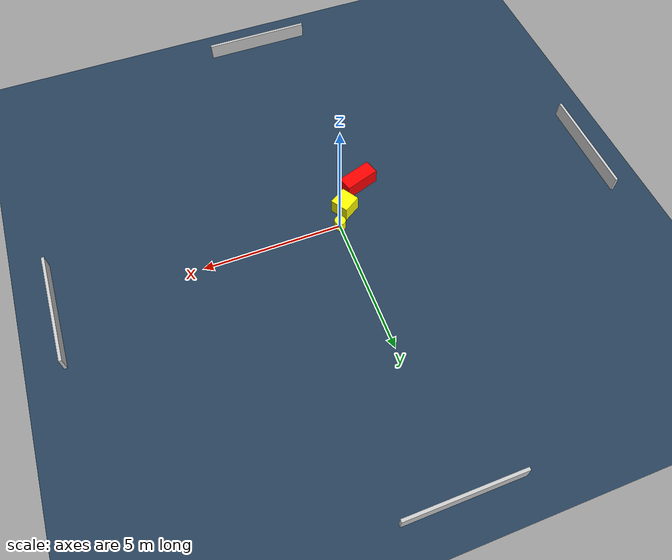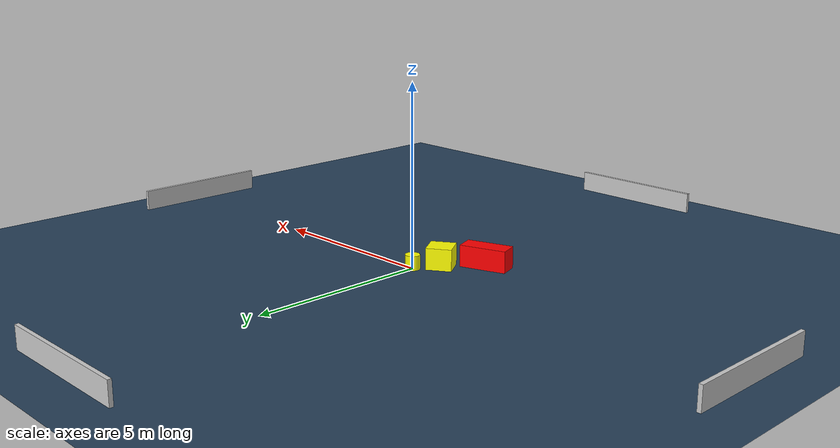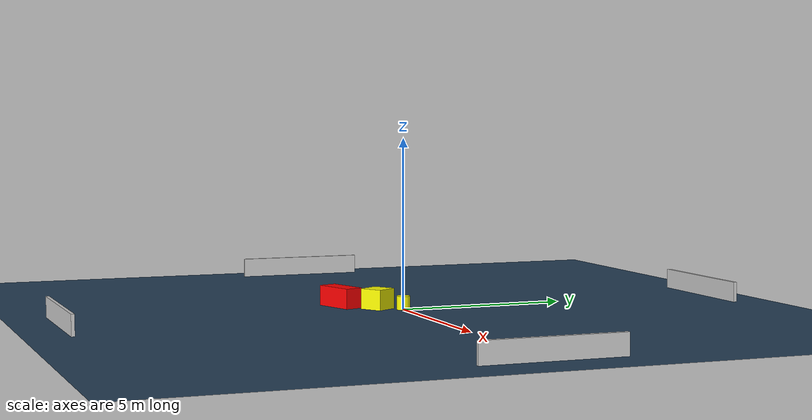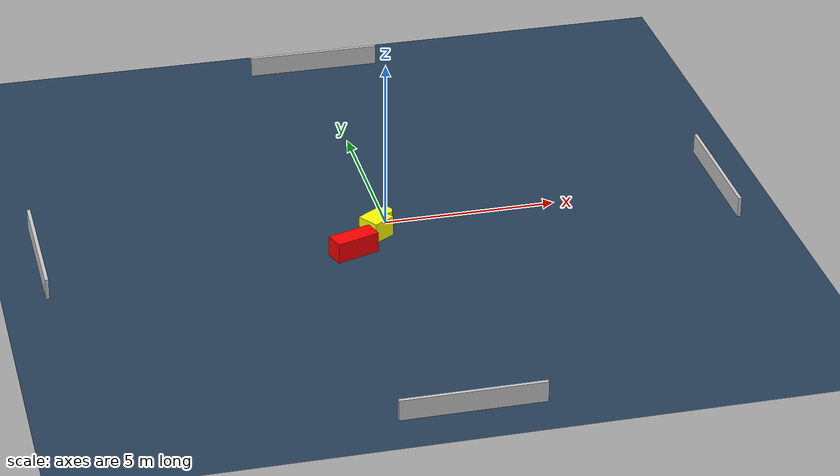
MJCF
<?xml version="1.0" ?>
<mujoco model="generated_environment">
  <option timestep="0.01" integrator="RK4" cone="elliptic"/>
  <default>
    <geom density="1"/>
  </default>
  <asset>
    <texture builtin="gradient" height="3072" name="skybox" rgb1="0.3 0.5 0.7" rgb2="0 0 0" type="skybox" width="512"/>
    <texture builtin="checker" height="300" name="groundplane" rgb1="0.2 0.3 0.4" rgb2="0.1 0.2 0.3" type="2d" width="300"/>
    <material name="groundplane" reflectance="0.2" texrepeat="5 5" texture="groundplane"/>
  </asset>
  <worldbody>
    <light dir="0 0 -1" directional="true" pos="0 0 1.5"/>
    <geom condim="3" friction="0.5 0.005 0.001" material="groundplane" name="floor" pos="0 0 0" size="0 0 0.05" type="plane"/>
    <body name="walls">
      <geom name="wall_1" condim="4" pos="-10.0 0.0 0.3" rgba="0.800000011920929 0.800000011920929 0.800000011920929 1.0" size="0.05 2.0 0.3" type="box"/>
      <geom name="wall_2" condim="4" pos="10.0 0.0 0.3" rgba="0.800000011920929 0.800000011920929 0.800000011920929 1.0" size="0.05 2.0 0.3" type="box"/>
      <geom name="wall_3" condim="4" pos="0.0 -10.0 0.3" rgba="0.800000011920929 0.800000011920929 0.800000011920929 1.0" size="2.0 0.05 0.3" type="box"/>
      <geom name="wall_4" condim="4" pos="0.0 10.0 0.3" rgba="0.800000011920929 0.800000011920929 0.800000011920929 1.0" size="2.0 0.05 0.3" type="box"/>
    </body>
    <body name="robot">
      <joint name="joint_x" type="slide" pos="0 0 0" axis="1 0 0"/>
      <joint name="joint_y" type="slide" pos="0 0 0" axis="0 1 0"/>
      <geom name="robot" type="cylinder" pos="0.0 0.0 0.2" size="0.2 0.2 0.0" mass="5.0" friction="1.0 0.005 0.0001" condim="4" rgba="1.0 1.0 0.0 1.0"/>
    </body>
    <body name="obstacle_1_movable">
      <geom name="obstacle_1_movable" condim="4" pos="-0.4210891259831285 -0.6493118367409046 0.3" euler="0 0 302.33385917191976" friction="0.0 0.005 0.001" rgba="1.0 1.0 0.0 1.0" size="0.3368069670942687 0.3483978367081064 0.3" type="box" mass="0.1"/>
      <joint type="free"/>
    </body>
    <body name="obstacle_2_static">
      <geom name="obstacle_2_static" condim="4" pos="-1.264876234816572 -1.5047260360198815 0.3" euler="0 0 18.319784251179666" friction="0.0 0.005 0.001" rgba="1.0 0.0 0.0 1.0" size="0.6512341272594899 0.2732337081304695 0.3" type="box"/>
    </body>
  </worldbody>
  <actuator>
    <motor name="actuator_x" joint="joint_x" gear="1" ctrlrange="-1 1"/>
    <motor name="actuator_y" joint="joint_y" gear="1" ctrlrange="-1 1"/>
  </actuator>
</mujoco>
